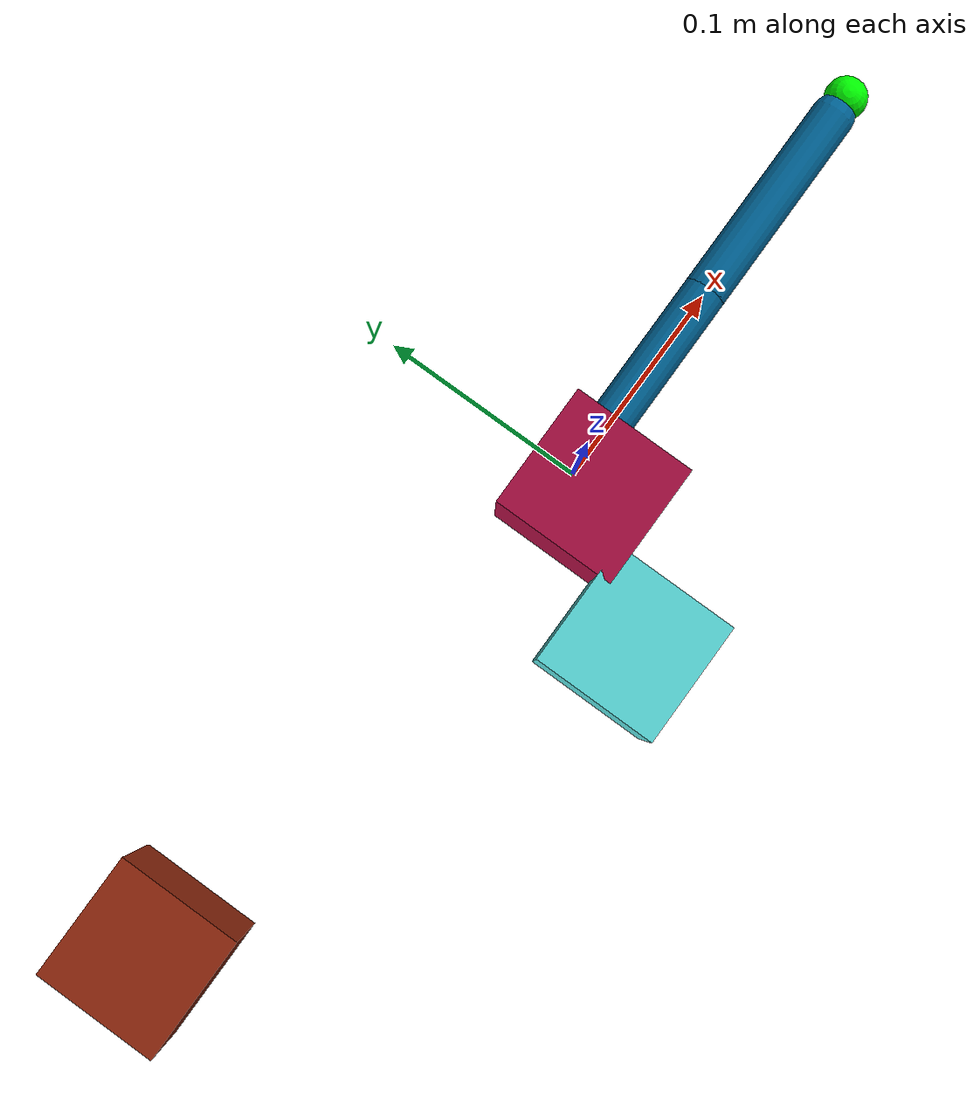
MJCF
<mujoco model="reacher">
	<compiler inertiafromgeom="true" angle="radian"/>
	<default >
		<joint armature="1" damping="1" limited="true"/>
		<geom contype="0" friction="1 0.1 0.1" rgba="0.7 0.7 0 1"/>
	</default>
	<option integrator="RK4" gravity="0 0 -9.81" timestep="0.01"/>
	<worldbody >
		<geom conaffinity="0" name="root" contype="0" fromto="0 0 0 0 0 0.02" rgba="0.9 0.4 0.6 1" type="cylinder" size=".011"/>
		<body name="body0" pos="0 0 .01">
			<geom name="link0" type="capsule" fromto="0 0 0 0.1 0 0" rgba="0.0 0.4 0.6 1.0" size=".01"/>
			<joint limited="true" name="joint0" pos="0 0 0" range="-3.14 3.14" type="hinge" axis="0 0 1"/>
			<body name="body1" pos="0.1 0 0">
				<joint limited="true" name="joint1" pos="0 0 0" range="-3.0 3.0" type="hinge" axis="0 0 1"/>
				<geom name="link1" type="capsule" fromto="0 0 0 0.1 0 0" rgba="0.0 0.4 0.6 1.0" size=".01"/>
				<body name="fingertip" pos="0.11 0 0">
					<site pos="0 0 0" name="fingertip" size="0.01"/>
					<geom name="fingertip" pos="0 0 0" contype="0" rgba="0 1 0 1" type="sphere" size=".01"/>
				</body>
			</body>
		</body>
		<body name="target" pos="-0.277653185895 0.0275442628015 0.01">
			<geom conaffinity="0" density="0.00001" contype="0" rgba="0.55 0.15 0.05 1.0" type="box" size="0.03 0.03 0.03"/>
			<site pos="0 0 0" name="target" size="0.01"/>
		</body>
		<body name="cube_0" pos="-0.0483389921099 -0.0645642618671 0.01">
			<geom conaffinity="0" density="0.00001" contype="0" rgba="0.35 0.85 0.85 1.0" type="box" size="0.03 0.03 0.03"/>
		</body>
		<body name="cube_1" pos="-0.00401840091925 -0.0112140473854 0.01">
			<geom conaffinity="0" density="0.00001" contype="0" rgba="0.65 0.05 0.25 1.0" type="box" size="0.03 0.03 0.03"/>
		</body>
	</worldbody>
	<actuator >
		<motor ctrllimited="true" joint="joint0" ctrlrange="-1.0 1.0" gear="200.0"/>
		<motor ctrllimited="true" joint="joint1" ctrlrange="-1.0 1.0" gear="200.0"/>
	</actuator>
</mujoco>
